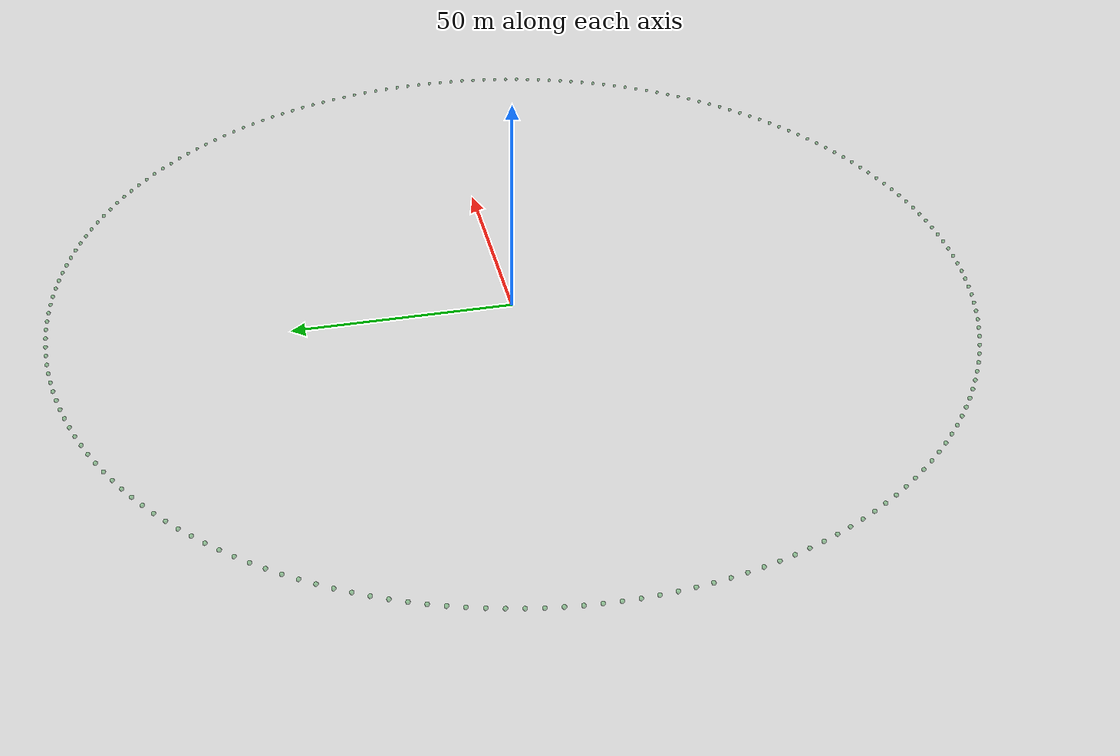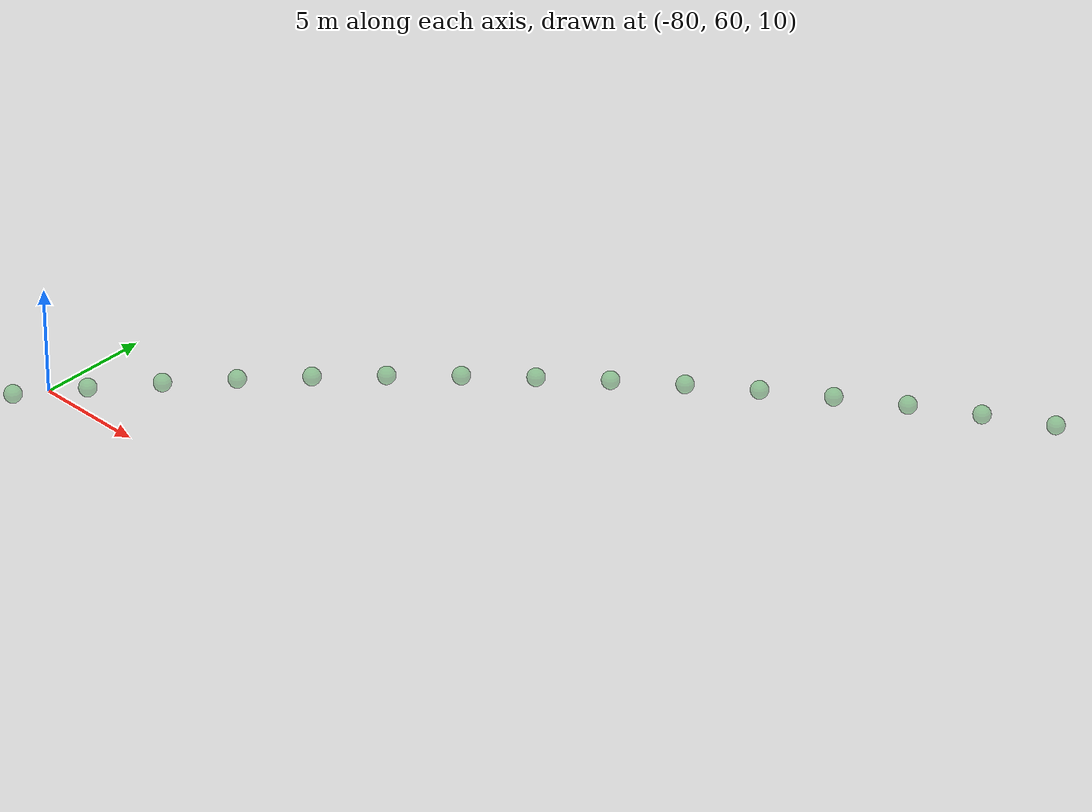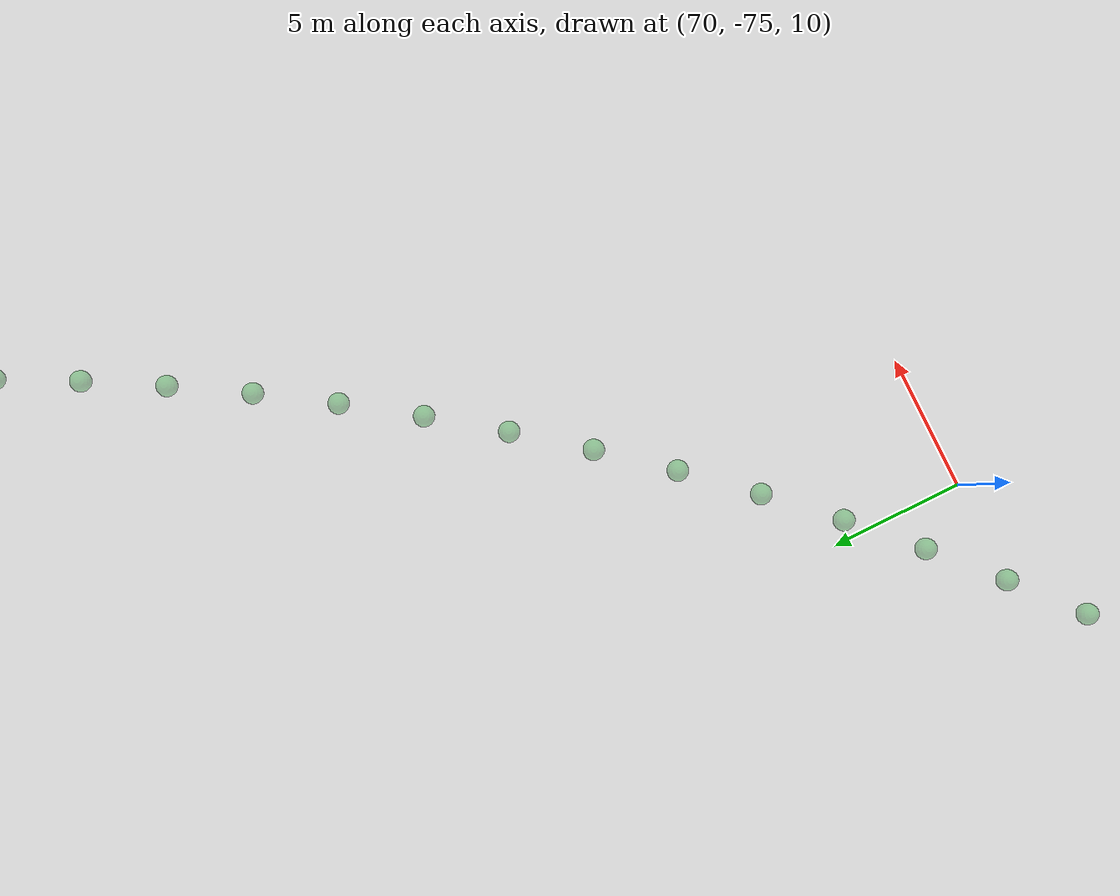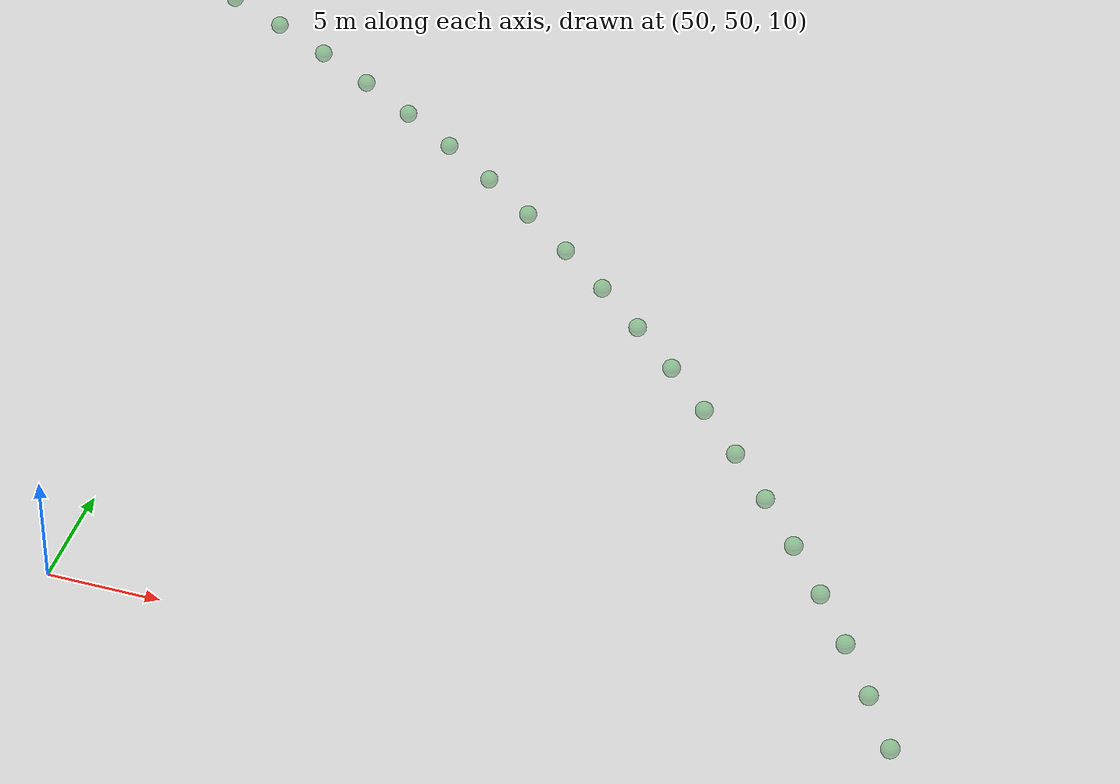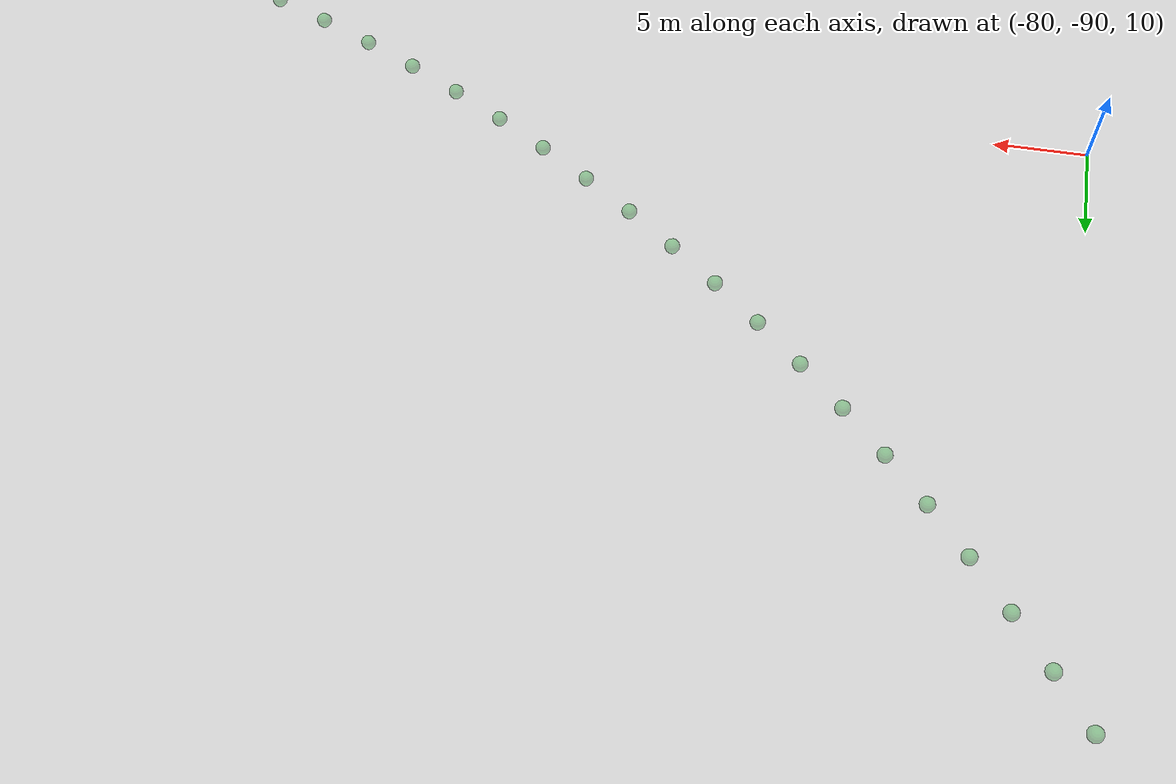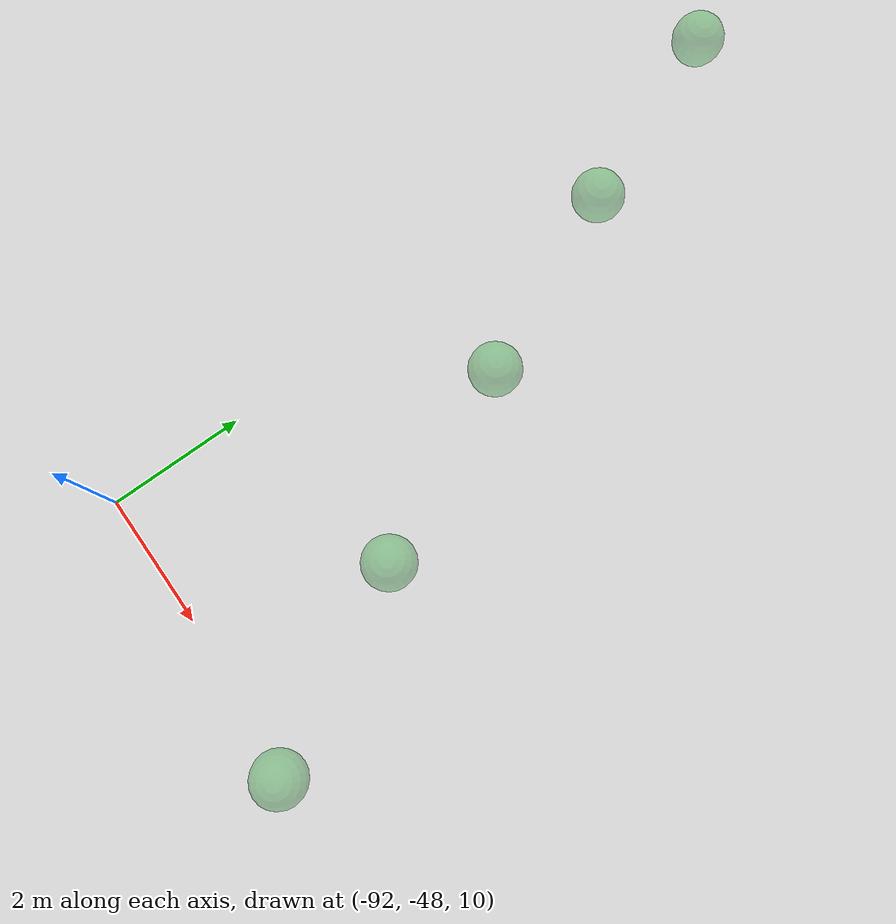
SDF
<sdf version="1.4">
 <world name="default">
  <include><uri>model://sun</uri></include>
  <include>
   <name>Goal_000</name>
   <uri>model://Goal__New</uri>
   <pose>100.0 0.0 10 0 0.000143 -1.57317</pose>
  </include>
  <include>
   <name>Goal_001</name>
   <uri>model://Goal__New</uri>
   <pose>99.95065603657316 3.141075907812829 10 0 0.000143 -1.57317</pose>
  </include>
  <include>
   <name>Goal_002</name>
   <uri>model://Goal__New</uri>
   <pose>99.80267284282715 6.279051952931337 10 0 0.000143 -1.57317</pose>
  </include>
  <include>
   <name>Goal_003</name>
   <uri>model://Goal__New</uri>
   <pose>99.556196460308 9.410831331851432 10 0 0.000143 -1.57317</pose>
  </include>
  <include>
   <name>Goal_004</name>
   <uri>model://Goal__New</uri>
   <pose>99.21147013144778 12.533323356430426 10 0 0.000143 -1.57317</pose>
  </include>
  <include>
   <name>Goal_005</name>
   <uri>model://Goal__New</uri>
   <pose>98.76883405951378 15.643446504023087 10 0 0.000143 -1.57317</pose>
  </include>
  <include>
   <name>Goal_006</name>
   <uri>model://Goal__New</uri>
   <pose>98.22872507286887 18.73813145857246 10 0 0.000143 -1.57317</pose>
  </include>
  <include>
   <name>Goal_007</name>
   <uri>model://Goal__New</uri>
   <pose>97.59167619387475 21.814324139654254 10 0 0.000143 -1.57317</pose>
  </include>
  <include>
   <name>Goal_008</name>
   <uri>model://Goal__New</uri>
   <pose>96.85831611286311 24.86898871648548 10 0 0.000143 -1.57317</pose>
  </include>
  <include>
   <name>Goal_009</name>
   <uri>model://Goal__New</uri>
   <pose>96.0293685676943 27.899110603922928 10 0 0.000143 -1.57317</pose>
  </include>
  <include>
   <name>Goal_010</name>
   <uri>model://Goal__New</uri>
   <pose>95.10565162951535 30.901699437494738 10 0 0.000143 -1.57317</pose>
  </include>
  <include>
   <name>Goal_011</name>
   <uri>model://Goal__New</uri>
   <pose>94.08807689542255 33.87379202452914 10 0 0.000143 -1.57317</pose>
  </include>
  <include>
   <name>Goal_012</name>
   <uri>model://Goal__New</uri>
   <pose>92.97764858882515 36.812455268467794 10 0 0.000143 -1.57317</pose>
  </include>
  <include>
   <name>Goal_013</name>
   <uri>model://Goal__New</uri>
   <pose>91.77546256839811 39.714789063478065 10 0 0.000143 -1.57317</pose>
  </include>
  <include>
   <name>Goal_014</name>
   <uri>model://Goal__New</uri>
   <pose>90.48270524660195 42.57792915650727 10 0 0.000143 -1.57317</pose>
  </include>
  <include>
   <name>Goal_015</name>
   <uri>model://Goal__New</uri>
   <pose>89.10065241883679 45.399049973954675 10 0 0.000143 -1.57317</pose>
  </include>
  <include>
   <name>Goal_016</name>
   <uri>model://Goal__New</uri>
   <pose>87.63066800438637 48.17536741017153 10 0 0.000143 -1.57317</pose>
  </include>
  <include>
   <name>Goal_017</name>
   <uri>model://Goal__New</uri>
   <pose>86.07420270039437 50.90414157503713 10 0 0.000143 -1.57317</pose>
  </include>
  <include>
   <name>Goal_018</name>
   <uri>model://Goal__New</uri>
   <pose>84.43279255020151 53.58267949789967 10 0 0.000143 -1.57317</pose>
  </include>
  <include>
   <name>Goal_019</name>
   <uri>model://Goal__New</uri>
   <pose>82.70805742745618 56.20833778521306 10 0 0.000143 -1.57317</pose>
  </include>
  <include>
   <name>Goal_020</name>
   <uri>model://Goal__New</uri>
   <pose>80.90169943749474 58.778525229247315 10 0 0.000143 -1.57317</pose>
  </include>
  <include>
   <name>Goal_021</name>
   <uri>model://Goal__New</uri>
   <pose>79.01550123756903 61.29070536529765 10 0 0.000143 -1.57317</pose>
  </include>
  <include>
   <name>Goal_022</name>
   <uri>model://Goal__New</uri>
   <pose>77.05132427757893 63.74239897486896 10 0 0.000143 -1.57317</pose>
  </include>
  <include>
   <name>Goal_023</name>
   <uri>model://Goal__New</uri>
   <pose>75.01110696304596 66.13118653236518 10 0 0.000143 -1.57317</pose>
  </include>
  <include>
   <name>Goal_024</name>
   <uri>model://Goal__New</uri>
   <pose>72.89686274214115 68.45471059286886 10 0 0.000143 -1.57317</pose>
  </include>
  <include>
   <name>Goal_025</name>
   <uri>model://Goal__New</uri>
   <pose>70.71067811865476 70.71067811865474 10 0 0.000143 -1.57317</pose>
  </include>
  <include>
   <name>Goal_026</name>
   <uri>model://Goal__New</uri>
   <pose>68.45471059286886 72.89686274214115 10 0 0.000143 -1.57317</pose>
  </include>
  <include>
   <name>Goal_027</name>
   <uri>model://Goal__New</uri>
   <pose>66.13118653236519 75.01110696304595 10 0 0.000143 -1.57317</pose>
  </include>
  <include>
   <name>Goal_028</name>
   <uri>model://Goal__New</uri>
   <pose>63.742398974868976 77.05132427757893 10 0 0.000143 -1.57317</pose>
  </include>
  <include>
   <name>Goal_029</name>
   <uri>model://Goal__New</uri>
   <pose>61.29070536529765 79.01550123756904 10 0 0.000143 -1.57317</pose>
  </include>
  <include>
   <name>Goal_030</name>
   <uri>model://Goal__New</uri>
   <pose>58.77852522924732 80.90169943749473 10 0 0.000143 -1.57317</pose>
  </include>
  <include>
   <name>Goal_031</name>
   <uri>model://Goal__New</uri>
   <pose>56.20833778521307 82.70805742745617 10 0 0.000143 -1.57317</pose>
  </include>
  <include>
   <name>Goal_032</name>
   <uri>model://Goal__New</uri>
   <pose>53.582679497899655 84.43279255020151 10 0 0.000143 -1.57317</pose>
  </include>
  <include>
   <name>Goal_033</name>
   <uri>model://Goal__New</uri>
   <pose>50.90414157503712 86.07420270039437 10 0 0.000143 -1.57317</pose>
  </include>
  <include>
   <name>Goal_034</name>
   <uri>model://Goal__New</uri>
   <pose>48.17536741017152 87.63066800438637 10 0 0.000143 -1.57317</pose>
  </include>
  <include>
   <name>Goal_035</name>
   <uri>model://Goal__New</uri>
   <pose>45.39904997395468 89.10065241883677 10 0 0.000143 -1.57317</pose>
  </include>
  <include>
   <name>Goal_036</name>
   <uri>model://Goal__New</uri>
   <pose>42.57792915650727 90.48270524660195 10 0 0.000143 -1.57317</pose>
  </include>
  <include>
   <name>Goal_037</name>
   <uri>model://Goal__New</uri>
   <pose>39.71478906347806 91.77546256839811 10 0 0.000143 -1.57317</pose>
  </include>
  <include>
   <name>Goal_038</name>
   <uri>model://Goal__New</uri>
   <pose>36.81245526846781 92.97764858882513 10 0 0.000143 -1.57317</pose>
  </include>
  <include>
   <name>Goal_039</name>
   <uri>model://Goal__New</uri>
   <pose>33.873792024529145 94.08807689542255 10 0 0.000143 -1.57317</pose>
  </include>
  <include>
   <name>Goal_040</name>
   <uri>model://Goal__New</uri>
   <pose>30.901699437494745 95.10565162951535 10 0 0.000143 -1.57317</pose>
  </include>
  <include>
   <name>Goal_041</name>
   <uri>model://Goal__New</uri>
   <pose>27.89911060392295 96.02936856769429 10 0 0.000143 -1.57317</pose>
  </include>
  <include>
   <name>Goal_042</name>
   <uri>model://Goal__New</uri>
   <pose>24.868988716485475 96.85831611286311 10 0 0.000143 -1.57317</pose>
  </include>
  <include>
   <name>Goal_043</name>
   <uri>model://Goal__New</uri>
   <pose>21.81432413965427 97.59167619387473 10 0 0.000143 -1.57317</pose>
  </include>
  <include>
   <name>Goal_044</name>
   <uri>model://Goal__New</uri>
   <pose>18.738131458572475 98.22872507286885 10 0 0.000143 -1.57317</pose>
  </include>
  <include>
   <name>Goal_045</name>
   <uri>model://Goal__New</uri>
   <pose>15.643446504023093 98.76883405951378 10 0 0.000143 -1.57317</pose>
  </include>
  <include>
   <name>Goal_046</name>
   <uri>model://Goal__New</uri>
   <pose>12.533323356430447 99.21147013144778 10 0 0.000143 -1.57317</pose>
  </include>
  <include>
   <name>Goal_047</name>
   <uri>model://Goal__New</uri>
   <pose>9.410831331851428 99.556196460308 10 0 0.000143 -1.57317</pose>
  </include>
  <include>
   <name>Goal_048</name>
   <uri>model://Goal__New</uri>
   <pose>6.279051952931352 99.80267284282715 10 0 0.000143 -1.57317</pose>
  </include>
  <include>
   <name>Goal_049</name>
   <uri>model://Goal__New</uri>
   <pose>3.1410759078128394 99.95065603657316 10 0 0.000143 -1.57317</pose>
  </include>
  <include>
   <name>Goal_050</name>
   <uri>model://Goal__New</uri>
   <pose>6.123233995736766e-15 100.0 10 0 0.000143 -1.57317</pose>
  </include>
  <include>
   <name>Goal_051</name>
   <uri>model://Goal__New</uri>
   <pose>-3.141075907812828 99.95065603657316 10 0 0.000143 -1.57317</pose>
  </include>
  <include>
   <name>Goal_052</name>
   <uri>model://Goal__New</uri>
   <pose>-6.27905195293134 99.80267284282715 10 0 0.000143 -1.57317</pose>
  </include>
  <include>
   <name>Goal_053</name>
   <uri>model://Goal__New</uri>
   <pose>-9.410831331851439 99.556196460308 10 0 0.000143 -1.57317</pose>
  </include>
  <include>
   <name>Goal_054</name>
   <uri>model://Goal__New</uri>
   <pose>-12.533323356430415 99.21147013144778 10 0 0.000143 -1.57317</pose>
  </include>
  <include>
   <name>Goal_055</name>
   <uri>model://Goal__New</uri>
   <pose>-15.643446504023082 98.76883405951378 10 0 0.000143 -1.57317</pose>
  </include>
  <include>
   <name>Goal_056</name>
   <uri>model://Goal__New</uri>
   <pose>-18.73813145857246 98.22872507286887 10 0 0.000143 -1.57317</pose>
  </include>
  <include>
   <name>Goal_057</name>
   <uri>model://Goal__New</uri>
   <pose>-21.814324139654236 97.59167619387475 10 0 0.000143 -1.57317</pose>
  </include>
  <include>
   <name>Goal_058</name>
   <uri>model://Goal__New</uri>
   <pose>-24.868988716485486 96.85831611286311 10 0 0.000143 -1.57317</pose>
  </include>
  <include>
   <name>Goal_059</name>
   <uri>model://Goal__New</uri>
   <pose>-27.899110603922917 96.0293685676943 10 0 0.000143 -1.57317</pose>
  </include>
  <include>
   <name>Goal_060</name>
   <uri>model://Goal__New</uri>
   <pose>-30.901699437494713 95.10565162951536 10 0 0.000143 -1.57317</pose>
  </include>
  <include>
   <name>Goal_061</name>
   <uri>model://Goal__New</uri>
   <pose>-33.87379202452914 94.08807689542255 10 0 0.000143 -1.57317</pose>
  </include>
  <include>
   <name>Goal_062</name>
   <uri>model://Goal__New</uri>
   <pose>-36.81245526846777 92.97764858882515 10 0 0.000143 -1.57317</pose>
  </include>
  <include>
   <name>Goal_063</name>
   <uri>model://Goal__New</uri>
   <pose>-39.714789063478065 91.77546256839811 10 0 0.000143 -1.57317</pose>
  </include>
  <include>
   <name>Goal_064</name>
   <uri>model://Goal__New</uri>
   <pose>-42.577929156507274 90.48270524660195 10 0 0.000143 -1.57317</pose>
  </include>
  <include>
   <name>Goal_065</name>
   <uri>model://Goal__New</uri>
   <pose>-45.39904997395467 89.10065241883679 10 0 0.000143 -1.57317</pose>
  </include>
  <include>
   <name>Goal_066</name>
   <uri>model://Goal__New</uri>
   <pose>-48.175367410171546 87.63066800438635 10 0 0.000143 -1.57317</pose>
  </include>
  <include>
   <name>Goal_067</name>
   <uri>model://Goal__New</uri>
   <pose>-50.90414157503713 86.07420270039437 10 0 0.000143 -1.57317</pose>
  </include>
  <include>
   <name>Goal_068</name>
   <uri>model://Goal__New</uri>
   <pose>-53.58267949789969 84.4327925502015 10 0 0.000143 -1.57317</pose>
  </include>
  <include>
   <name>Goal_069</name>
   <uri>model://Goal__New</uri>
   <pose>-56.20833778521307 82.70805742745617 10 0 0.000143 -1.57317</pose>
  </include>
  <include>
   <name>Goal_070</name>
   <uri>model://Goal__New</uri>
   <pose>-58.7785252292473 80.90169943749474 10 0 0.000143 -1.57317</pose>
  </include>
  <include>
   <name>Goal_071</name>
   <uri>model://Goal__New</uri>
   <pose>-61.29070536529766 79.01550123756903 10 0 0.000143 -1.57317</pose>
  </include>
  <include>
   <name>Goal_072</name>
   <uri>model://Goal__New</uri>
   <pose>-63.742398974868976 77.05132427757893 10 0 0.000143 -1.57317</pose>
  </include>
  <include>
   <name>Goal_073</name>
   <uri>model://Goal__New</uri>
   <pose>-66.13118653236518 75.01110696304598 10 0 0.000143 -1.57317</pose>
  </include>
  <include>
   <name>Goal_074</name>
   <uri>model://Goal__New</uri>
   <pose>-68.45471059286888 72.89686274214114 10 0 0.000143 -1.57317</pose>
  </include>
  <include>
   <name>Goal_075</name>
   <uri>model://Goal__New</uri>
   <pose>-70.71067811865474 70.71067811865476 10 0 0.000143 -1.57317</pose>
  </include>
  <include>
   <name>Goal_076</name>
   <uri>model://Goal__New</uri>
   <pose>-72.89686274214114 68.45471059286888 10 0 0.000143 -1.57317</pose>
  </include>
  <include>
   <name>Goal_077</name>
   <uri>model://Goal__New</uri>
   <pose>-75.01110696304596 66.13118653236518 10 0 0.000143 -1.57317</pose>
  </include>
  <include>
   <name>Goal_078</name>
   <uri>model://Goal__New</uri>
   <pose>-77.05132427757891 63.74239897486898 10 0 0.000143 -1.57317</pose>
  </include>
  <include>
   <name>Goal_079</name>
   <uri>model://Goal__New</uri>
   <pose>-79.01550123756904 61.29070536529764 10 0 0.000143 -1.57317</pose>
  </include>
  <include>
   <name>Goal_080</name>
   <uri>model://Goal__New</uri>
   <pose>-80.90169943749473 58.77852522924732 10 0 0.000143 -1.57317</pose>
  </include>
  <include>
   <name>Goal_081</name>
   <uri>model://Goal__New</uri>
   <pose>-82.70805742745617 56.20833778521308 10 0 0.000143 -1.57317</pose>
  </include>
  <include>
   <name>Goal_082</name>
   <uri>model://Goal__New</uri>
   <pose>-84.43279255020148 53.5826794978997 10 0 0.000143 -1.57317</pose>
  </include>
  <include>
   <name>Goal_083</name>
   <uri>model://Goal__New</uri>
   <pose>-86.07420270039438 50.90414157503711 10 0 0.000143 -1.57317</pose>
  </include>
  <include>
   <name>Goal_084</name>
   <uri>model://Goal__New</uri>
   <pose>-87.63066800438637 48.17536741017152 10 0 0.000143 -1.57317</pose>
  </include>
  <include>
   <name>Goal_085</name>
   <uri>model://Goal__New</uri>
   <pose>-89.10065241883677 45.39904997395469 10 0 0.000143 -1.57317</pose>
  </include>
  <include>
   <name>Goal_086</name>
   <uri>model://Goal__New</uri>
   <pose>-90.48270524660194 42.57792915650729 10 0 0.000143 -1.57317</pose>
  </include>
  <include>
   <name>Goal_087</name>
   <uri>model://Goal__New</uri>
   <pose>-91.7754625683981 39.71478906347811 10 0 0.000143 -1.57317</pose>
  </include>
  <include>
   <name>Goal_088</name>
   <uri>model://Goal__New</uri>
   <pose>-92.97764858882513 36.812455268467815 10 0 0.000143 -1.57317</pose>
  </include>
  <include>
   <name>Goal_089</name>
   <uri>model://Goal__New</uri>
   <pose>-94.08807689542255 33.87379202452913 10 0 0.000143 -1.57317</pose>
  </include>
  <include>
   <name>Goal_090</name>
   <uri>model://Goal__New</uri>
   <pose>-95.10565162951535 30.901699437494752 10 0 0.000143 -1.57317</pose>
  </include>
  <include>
   <name>Goal_091</name>
   <uri>model://Goal__New</uri>
   <pose>-96.02936856769429 27.899110603922956 10 0 0.000143 -1.57317</pose>
  </include>
  <include>
   <name>Goal_092</name>
   <uri>model://Goal__New</uri>
   <pose>-96.8583161128631 24.868988716485525 10 0 0.000143 -1.57317</pose>
  </include>
  <include>
   <name>Goal_093</name>
   <uri>model://Goal__New</uri>
   <pose>-97.59167619387473 21.814324139654275 10 0 0.000143 -1.57317</pose>
  </include>
  <include>
   <name>Goal_094</name>
   <uri>model://Goal__New</uri>
   <pose>-98.22872507286887 18.738131458572457 10 0 0.000143 -1.57317</pose>
  </include>
  <include>
   <name>Goal_095</name>
   <uri>model://Goal__New</uri>
   <pose>-98.76883405951376 15.643446504023098 10 0 0.000143 -1.57317</pose>
  </include>
  <include>
   <name>Goal_096</name>
   <uri>model://Goal__New</uri>
   <pose>-99.21147013144778 12.533323356430454 10 0 0.000143 -1.57317</pose>
  </include>
  <include>
   <name>Goal_097</name>
   <uri>model://Goal__New</uri>
   <pose>-99.556196460308 9.410831331851435 10 0 0.000143 -1.57317</pose>
  </include>
  <include>
   <name>Goal_098</name>
   <uri>model://Goal__New</uri>
   <pose>-99.80267284282715 6.279051952931358 10 0 0.000143 -1.57317</pose>
  </include>
  <include>
   <name>Goal_099</name>
   <uri>model://Goal__New</uri>
   <pose>-99.95065603657316 3.141075907812824 10 0 0.000143 -1.57317</pose>
  </include>
  <include>
   <name>Goal_100</name>
   <uri>model://Goal__New</uri>
   <pose>-100.0 1.2246467991473532e-14 10 0 0.000143 -1.57317</pose>
  </include>
  <include>
   <name>Goal_101</name>
   <uri>model://Goal__New</uri>
   <pose>-99.95065603657316 -3.1410759078127994 10 0 0.000143 -1.57317</pose>
  </include>
  <include>
   <name>Goal_102</name>
   <uri>model://Goal__New</uri>
   <pose>-99.80267284282715 -6.279051952931335 10 0 0.000143 -1.57317</pose>
  </include>
  <include>
   <name>Goal_103</name>
   <uri>model://Goal__New</uri>
   <pose>-99.556196460308 -9.41083133185141 10 0 0.000143 -1.57317</pose>
  </include>
  <include>
   <name>Goal_104</name>
   <uri>model://Goal__New</uri>
   <pose>-99.21147013144778 -12.53332335643043 10 0 0.000143 -1.57317</pose>
  </include>
  <include>
   <name>Goal_105</name>
   <uri>model://Goal__New</uri>
   <pose>-98.76883405951378 -15.643446504023073 10 0 0.000143 -1.57317</pose>
  </include>
  <include>
   <name>Goal_106</name>
   <uri>model://Goal__New</uri>
   <pose>-98.22872507286885 -18.738131458572475 10 0 0.000143 -1.57317</pose>
  </include>
  <include>
   <name>Goal_107</name>
   <uri>model://Goal__New</uri>
   <pose>-97.59167619387475 -21.81432413965425 10 0 0.000143 -1.57317</pose>
  </include>
  <include>
   <name>Goal_108</name>
   <uri>model://Goal__New</uri>
   <pose>-96.85831611286312 -24.868988716485458 10 0 0.000143 -1.57317</pose>
  </include>
  <include>
   <name>Goal_109</name>
   <uri>model://Goal__New</uri>
   <pose>-96.02936856769432 -27.89911060392289 10 0 0.000143 -1.57317</pose>
  </include>
  <include>
   <name>Goal_110</name>
   <uri>model://Goal__New</uri>
   <pose>-95.10565162951536 -30.901699437494727 10 0 0.000143 -1.57317</pose>
  </include>
  <include>
   <name>Goal_111</name>
   <uri>model://Goal__New</uri>
   <pose>-94.08807689542255 -33.873792024529145 10 0 0.000143 -1.57317</pose>
  </include>
  <include>
   <name>Goal_112</name>
   <uri>model://Goal__New</uri>
   <pose>-92.97764858882515 -36.812455268467794 10 0 0.000143 -1.57317</pose>
  </include>
  <include>
   <name>Goal_113</name>
   <uri>model://Goal__New</uri>
   <pose>-91.77546256839813 -39.71478906347804 10 0 0.000143 -1.57317</pose>
  </include>
  <include>
   <name>Goal_114</name>
   <uri>model://Goal__New</uri>
   <pose>-90.48270524660197 -42.577929156507224 10 0 0.000143 -1.57317</pose>
  </include>
  <include>
   <name>Goal_115</name>
   <uri>model://Goal__New</uri>
   <pose>-89.10065241883677 -45.39904997395471 10 0 0.000143 -1.57317</pose>
  </include>
  <include>
   <name>Goal_116</name>
   <uri>model://Goal__New</uri>
   <pose>-87.63066800438635 -48.17536741017154 10 0 0.000143 -1.57317</pose>
  </include>
  <include>
   <name>Goal_117</name>
   <uri>model://Goal__New</uri>
   <pose>-86.07420270039437 -50.90414157503712 10 0 0.000143 -1.57317</pose>
  </include>
  <include>
   <name>Goal_118</name>
   <uri>model://Goal__New</uri>
   <pose>-84.43279255020151 -53.58267949789964 10 0 0.000143 -1.57317</pose>
  </include>
  <include>
   <name>Goal_119</name>
   <uri>model://Goal__New</uri>
   <pose>-82.70805742745621 -56.208337785213025 10 0 0.000143 -1.57317</pose>
  </include>
  <include>
   <name>Goal_120</name>
   <uri>model://Goal__New</uri>
   <pose>-80.90169943749478 -58.77852522924727 10 0 0.000143 -1.57317</pose>
  </include>
  <include>
   <name>Goal_121</name>
   <uri>model://Goal__New</uri>
   <pose>-79.01550123756903 -61.29070536529766 10 0 0.000143 -1.57317</pose>
  </include>
  <include>
   <name>Goal_122</name>
   <uri>model://Goal__New</uri>
   <pose>-77.05132427757893 -63.74239897486896 10 0 0.000143 -1.57317</pose>
  </include>
  <include>
   <name>Goal_123</name>
   <uri>model://Goal__New</uri>
   <pose>-75.01110696304598 -66.13118653236518 10 0 0.000143 -1.57317</pose>
  </include>
  <include>
   <name>Goal_124</name>
   <uri>model://Goal__New</uri>
   <pose>-72.89686274214118 -68.45471059286884 10 0 0.000143 -1.57317</pose>
  </include>
  <include>
   <name>Goal_125</name>
   <uri>model://Goal__New</uri>
   <pose>-70.71067811865478 -70.71067811865471 10 0 0.000143 -1.57317</pose>
  </include>
  <include>
   <name>Goal_126</name>
   <uri>model://Goal__New</uri>
   <pose>-68.45471059286886 -72.89686274214115 10 0 0.000143 -1.57317</pose>
  </include>
  <include>
   <name>Goal_127</name>
   <uri>model://Goal__New</uri>
   <pose>-66.13118653236519 -75.01110696304595 10 0 0.000143 -1.57317</pose>
  </include>
  <include>
   <name>Goal_128</name>
   <uri>model://Goal__New</uri>
   <pose>-63.742398974868955 -77.05132427757894 10 0 0.000143 -1.57317</pose>
  </include>
  <include>
   <name>Goal_129</name>
   <uri>model://Goal__New</uri>
   <pose>-61.29070536529765 -79.01550123756904 10 0 0.000143 -1.57317</pose>
  </include>
  <include>
   <name>Goal_130</name>
   <uri>model://Goal__New</uri>
   <pose>-58.77852522924732 -80.90169943749473 10 0 0.000143 -1.57317</pose>
  </include>
  <include>
   <name>Goal_131</name>
   <uri>model://Goal__New</uri>
   <pose>-56.20833778521309 -82.70805742745615 10 0 0.000143 -1.57317</pose>
  </include>
  <include>
   <name>Goal_132</name>
   <uri>model://Goal__New</uri>
   <pose>-53.58267949789963 -84.43279255020153 10 0 0.000143 -1.57317</pose>
  </include>
  <include>
   <name>Goal_133</name>
   <uri>model://Goal__New</uri>
   <pose>-50.90414157503711 -86.07420270039438 10 0 0.000143 -1.57317</pose>
  </include>
  <include>
   <name>Goal_134</name>
   <uri>model://Goal__New</uri>
   <pose>-48.175367410171525 -87.63066800438637 10 0 0.000143 -1.57317</pose>
  </include>
  <include>
   <name>Goal_135</name>
   <uri>model://Goal__New</uri>
   <pose>-45.39904997395469 -89.10065241883677 10 0 0.000143 -1.57317</pose>
  </include>
  <include>
   <name>Goal_136</name>
   <uri>model://Goal__New</uri>
   <pose>-42.57792915650722 -90.48270524660198 10 0 0.000143 -1.57317</pose>
  </include>
  <include>
   <name>Goal_137</name>
   <uri>model://Goal__New</uri>
   <pose>-39.71478906347803 -91.77546256839813 10 0 0.000143 -1.57317</pose>
  </include>
  <include>
   <name>Goal_138</name>
   <uri>model://Goal__New</uri>
   <pose>-36.81245526846778 -92.97764858882515 10 0 0.000143 -1.57317</pose>
  </include>
  <include>
   <name>Goal_139</name>
   <uri>model://Goal__New</uri>
   <pose>-33.87379202452914 -94.08807689542255 10 0 0.000143 -1.57317</pose>
  </include>
  <include>
   <name>Goal_140</name>
   <uri>model://Goal__New</uri>
   <pose>-30.901699437494756 -95.10565162951535 10 0 0.000143 -1.57317</pose>
  </include>
  <include>
   <name>Goal_141</name>
   <uri>model://Goal__New</uri>
   <pose>-27.89911060392296 -96.02936856769429 10 0 0.000143 -1.57317</pose>
  </include>
  <include>
   <name>Goal_142</name>
   <uri>model://Goal__New</uri>
   <pose>-24.868988716485443 -96.85831611286312 10 0 0.000143 -1.57317</pose>
  </include>
  <include>
   <name>Goal_143</name>
   <uri>model://Goal__New</uri>
   <pose>-21.814324139654236 -97.59167619387475 10 0 0.000143 -1.57317</pose>
  </include>
  <include>
   <name>Goal_144</name>
   <uri>model://Goal__New</uri>
   <pose>-18.738131458572465 -98.22872507286887 10 0 0.000143 -1.57317</pose>
  </include>
  <include>
   <name>Goal_145</name>
   <uri>model://Goal__New</uri>
   <pose>-15.643446504023103 -98.76883405951376 10 0 0.000143 -1.57317</pose>
  </include>
  <include>
   <name>Goal_146</name>
   <uri>model://Goal__New</uri>
   <pose>-12.53332335643046 -99.21147013144778 10 0 0.000143 -1.57317</pose>
  </include>
  <include>
   <name>Goal_147</name>
   <uri>model://Goal__New</uri>
   <pose>-9.410831331851396 -99.556196460308 10 0 0.000143 -1.57317</pose>
  </include>
  <include>
   <name>Goal_148</name>
   <uri>model://Goal__New</uri>
   <pose>-6.2790519529313205 -99.80267284282715 10 0 0.000143 -1.57317</pose>
  </include>
  <include>
   <name>Goal_149</name>
   <uri>model://Goal__New</uri>
   <pose>-3.14107590781283 -99.95065603657316 10 0 0.000143 -1.57317</pose>
  </include>
  <include>
   <name>Goal_150</name>
   <uri>model://Goal__New</uri>
   <pose>-1.8369701987210297e-14 -100.0 10 0 0.000143 -1.57317</pose>
  </include>
  <include>
   <name>Goal_151</name>
   <uri>model://Goal__New</uri>
   <pose>3.141075907812793 -99.95065603657316 10 0 0.000143 -1.57317</pose>
  </include>
  <include>
   <name>Goal_152</name>
   <uri>model://Goal__New</uri>
   <pose>6.279051952931283 -99.80267284282715 10 0 0.000143 -1.57317</pose>
  </include>
  <include>
   <name>Goal_153</name>
   <uri>model://Goal__New</uri>
   <pose>9.41083133185145 -99.556196460308 10 0 0.000143 -1.57317</pose>
  </include>
  <include>
   <name>Goal_154</name>
   <uri>model://Goal__New</uri>
   <pose>12.533323356430422 -99.21147013144778 10 0 0.000143 -1.57317</pose>
  </include>
  <include>
   <name>Goal_155</name>
   <uri>model://Goal__New</uri>
   <pose>15.643446504023068 -98.76883405951378 10 0 0.000143 -1.57317</pose>
  </include>
  <include>
   <name>Goal_156</name>
   <uri>model://Goal__New</uri>
   <pose>18.738131458572425 -98.22872507286887 10 0 0.000143 -1.57317</pose>
  </include>
  <include>
   <name>Goal_157</name>
   <uri>model://Goal__New</uri>
   <pose>21.8143241396542 -97.59167619387476 10 0 0.000143 -1.57317</pose>
  </include>
  <include>
   <name>Goal_158</name>
   <uri>model://Goal__New</uri>
   <pose>24.868988716485493 -96.85831611286311 10 0 0.000143 -1.57317</pose>
  </include>
  <include>
   <name>Goal_159</name>
   <uri>model://Goal__New</uri>
   <pose>27.89911060392292 -96.0293685676943 10 0 0.000143 -1.57317</pose>
  </include>
  <include>
   <name>Goal_160</name>
   <uri>model://Goal__New</uri>
   <pose>30.901699437494724 -95.10565162951536 10 0 0.000143 -1.57317</pose>
  </include>
  <include>
   <name>Goal_161</name>
   <uri>model://Goal__New</uri>
   <pose>33.8737920245291 -94.08807689542256 10 0 0.000143 -1.57317</pose>
  </include>
  <include>
   <name>Goal_162</name>
   <uri>model://Goal__New</uri>
   <pose>36.812455268467744 -92.97764858882516 10 0 0.000143 -1.57317</pose>
  </include>
  <include>
   <name>Goal_163</name>
   <uri>model://Goal__New</uri>
   <pose>39.714789063477994 -91.77546256839815 10 0 0.000143 -1.57317</pose>
  </include>
  <include>
   <name>Goal_164</name>
   <uri>model://Goal__New</uri>
   <pose>42.57792915650718 -90.482705246602 10 0 0.000143 -1.57317</pose>
  </include>
  <include>
   <name>Goal_165</name>
   <uri>model://Goal__New</uri>
   <pose>45.39904997395458 -89.10065241883683 10 0 0.000143 -1.57317</pose>
  </include>
  <include>
   <name>Goal_166</name>
   <uri>model://Goal__New</uri>
   <pose>48.175367410171575 -87.63066800438634 10 0 0.000143 -1.57317</pose>
  </include>
  <include>
   <name>Goal_167</name>
   <uri>model://Goal__New</uri>
   <pose>50.90414157503715 -86.07420270039434 10 0 0.000143 -1.57317</pose>
  </include>
  <include>
   <name>Goal_168</name>
   <uri>model://Goal__New</uri>
   <pose>53.582679497899676 -84.4327925502015 10 0 0.000143 -1.57317</pose>
  </include>
  <include>
   <name>Goal_169</name>
   <uri>model://Goal__New</uri>
   <pose>56.20833778521306 -82.70805742745618 10 0 0.000143 -1.57317</pose>
  </include>
  <include>
   <name>Goal_170</name>
   <uri>model://Goal__New</uri>
   <pose>58.77852522924729 -80.90169943749476 10 0 0.000143 -1.57317</pose>
  </include>
  <include>
   <name>Goal_171</name>
   <uri>model://Goal__New</uri>
   <pose>61.29070536529761 -79.01550123756907 10 0 0.000143 -1.57317</pose>
  </include>
  <include>
   <name>Goal_172</name>
   <uri>model://Goal__New</uri>
   <pose>63.742398974868934 -77.05132427757896 10 0 0.000143 -1.57317</pose>
  </include>
  <include>
   <name>Goal_173</name>
   <uri>model://Goal__New</uri>
   <pose>66.13118653236512 -75.011106963046 10 0 0.000143 -1.57317</pose>
  </include>
  <include>
   <name>Goal_174</name>
   <uri>model://Goal__New</uri>
   <pose>68.45471059286879 -72.89686274214121 10 0 0.000143 -1.57317</pose>
  </include>
  <include>
   <name>Goal_175</name>
   <uri>model://Goal__New</uri>
   <pose>70.71067811865468 -70.71067811865484 10 0 0.000143 -1.57317</pose>
  </include>
  <include>
   <name>Goal_176</name>
   <uri>model://Goal__New</uri>
   <pose>72.89686274214112 -68.45471059286889 10 0 0.000143 -1.57317</pose>
  </include>
  <include>
   <name>Goal_177</name>
   <uri>model://Goal__New</uri>
   <pose>75.01110696304598 -66.13118653236516 10 0 0.000143 -1.57317</pose>
  </include>
  <include>
   <name>Goal_178</name>
   <uri>model://Goal__New</uri>
   <pose>77.05132427757894 -63.74239897486896 10 0 0.000143 -1.57317</pose>
  </include>
  <include>
   <name>Goal_179</name>
   <uri>model://Goal__New</uri>
   <pose>79.01550123756903 -61.29070536529765 10 0 0.000143 -1.57317</pose>
  </include>
  <include>
   <name>Goal_180</name>
   <uri>model://Goal__New</uri>
   <pose>80.90169943749473 -58.778525229247336 10 0 0.000143 -1.57317</pose>
  </include>
  <include>
   <name>Goal_181</name>
   <uri>model://Goal__New</uri>
   <pose>82.70805742745615 -56.20833778521309 10 0 0.000143 -1.57317</pose>
  </include>
  <include>
   <name>Goal_182</name>
   <uri>model://Goal__New</uri>
   <pose>84.43279255020147 -53.58267949789971 10 0 0.000143 -1.57317</pose>
  </include>
  <include>
   <name>Goal_183</name>
   <uri>model://Goal__New</uri>
   <pose>86.07420270039432 -50.9041415750372 10 0 0.000143 -1.57317</pose>
  </include>
  <include>
   <name>Goal_184</name>
   <uri>model://Goal__New</uri>
   <pose>87.63066800438631 -48.17536741017161 10 0 0.000143 -1.57317</pose>
  </include>
  <include>
   <name>Goal_185</name>
   <uri>model://Goal__New</uri>
   <pose>89.10065241883677 -45.399049973954696 10 0 0.000143 -1.57317</pose>
  </include>
  <include>
   <name>Goal_186</name>
   <uri>model://Goal__New</uri>
   <pose>90.48270524660194 -42.5779291565073 10 0 0.000143 -1.57317</pose>
  </include>
  <include>
   <name>Goal_187</name>
   <uri>model://Goal__New</uri>
   <pose>91.77546256839813 -39.71478906347804 10 0 0.000143 -1.57317</pose>
  </include>
  <include>
   <name>Goal_188</name>
   <uri>model://Goal__New</uri>
   <pose>92.97764858882515 -36.81245526846779 10 0 0.000143 -1.57317</pose>
  </include>
  <include>
   <name>Goal_189</name>
   <uri>model://Goal__New</uri>
   <pose>94.08807689542255 -33.873792024529145 10 0 0.000143 -1.57317</pose>
  </include>
  <include>
   <name>Goal_190</name>
   <uri>model://Goal__New</uri>
   <pose>95.10565162951535 -30.901699437494763 10 0 0.000143 -1.57317</pose>
  </include>
  <include>
   <name>Goal_191</name>
   <uri>model://Goal__New</uri>
   <pose>96.02936856769429 -27.899110603922967 10 0 0.000143 -1.57317</pose>
  </include>
  <include>
   <name>Goal_192</name>
   <uri>model://Goal__New</uri>
   <pose>96.8583161128631 -24.868988716485536 10 0 0.000143 -1.57317</pose>
  </include>
  <include>
   <name>Goal_193</name>
   <uri>model://Goal__New</uri>
   <pose>97.59167619387472 -21.81432413965433 10 0 0.000143 -1.57317</pose>
  </include>
  <include>
   <name>Goal_194</name>
   <uri>model://Goal__New</uri>
   <pose>98.22872507286887 -18.738131458572468 10 0 0.000143 -1.57317</pose>
  </include>
  <include>
   <name>Goal_195</name>
   <uri>model://Goal__New</uri>
   <pose>98.76883405951376 -15.643446504023109 10 0 0.000143 -1.57317</pose>
  </include>
  <include>
   <name>Goal_196</name>
   <uri>model://Goal__New</uri>
   <pose>99.21147013144778 -12.533323356430465 10 0 0.000143 -1.57317</pose>
  </include>
  <include>
   <name>Goal_197</name>
   <uri>model://Goal__New</uri>
   <pose>99.556196460308 -9.41083133185149 10 0 0.000143 -1.57317</pose>
  </include>
  <include>
   <name>Goal_198</name>
   <uri>model://Goal__New</uri>
   <pose>99.80267284282715 -6.279051952931327 10 0 0.000143 -1.57317</pose>
  </include>
  <include>
   <name>Goal_199</name>
   <uri>model://Goal__New</uri>
   <pose>99.95065603657316 -3.1410759078128363 10 0 0.000143 -1.57317</pose>
  </include>
  <plugin filename="librotors_gazebo_ros_interface_plugin.so" name="ros_interface_plugin"/>
  <spherical_coordinates>
   <surface_model>EARTH_WGS84</surface_model>
   <latitude_deg>47.3667</latitude_deg>
   <longitude_deg>8.5500</longitude_deg>
   <elevation>500.0</elevation>
   <heading_deg>0</heading_deg>
  </spherical_coordinates>
  <physics type="ode">
   <ode>
    <solver><type>quick</type><iters>1000</iters><sor>1.3</sor></solver>
    <constraints>
     <cfm>0</cfm>
     <erp>0.2</erp>
     <contact_max_correcting_vel>100</contact_max_correcting_vel>
     <contact_surface_layer>0.001</contact_surface_layer>
    </constraints>
   </ode>
   <max_step_size>0.01</max_step_size>
   <real_time_factor>1</real_time_factor>
   <real_time_update_rate>100</real_time_update_rate>
   <gravity>0 0 -9.8</gravity>
  </physics>
 </world>
</sdf>

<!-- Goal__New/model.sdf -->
<sdf version='1.6'>
  <model name='Goal__New'>
    <link name='link'>
      <pose frame=''>0 0 0 0 -0 0</pose>
      <inertial>
        <mass>1</mass>
        <inertia>
          <ixx>0.1</ixx>
          <ixy>0</ixy>
          <ixz>0</ixz>
          <iyy>0.1</iyy>
          <iyz>0</iyz>
          <izz>0.1</izz>
        </inertia>
        <pose frame=''>0 0 0 0 -0 0</pose>
      </inertial>
      <self_collide>0</self_collide>
      <kinematic>0</kinematic>
      <gravity>0</gravity>
      <visual name='visual'>
        <geometry>
          <sphere>
            <radius>0.4</radius>
          </sphere>
        </geometry>
        <material>
          <script>
            <name>Gazebo/Green</name>
            <uri>file://media/materials/scripts/gazebo.material</uri>
          </script>
          <shader type='pixel'>
            <normal_map>__default__</normal_map>
          </shader>
          <ambient>0 0.8 0 0.2</ambient>
          <diffuse>0 0.8 0 0.2</diffuse>
          <specular>0 0.8 0 0.2</specular>
          <emissive>0 0.8 0 0.2</emissive>
        </material>
        <pose frame=''>0 0 0 0 -0 0</pose>
        <transparency>0.6</transparency>
        <cast_shadows>1</cast_shadows>
      </visual>
    </link>
    <static>0</static>
    <allow_auto_disable>1</allow_auto_disable>
  </model>
</sdf>
